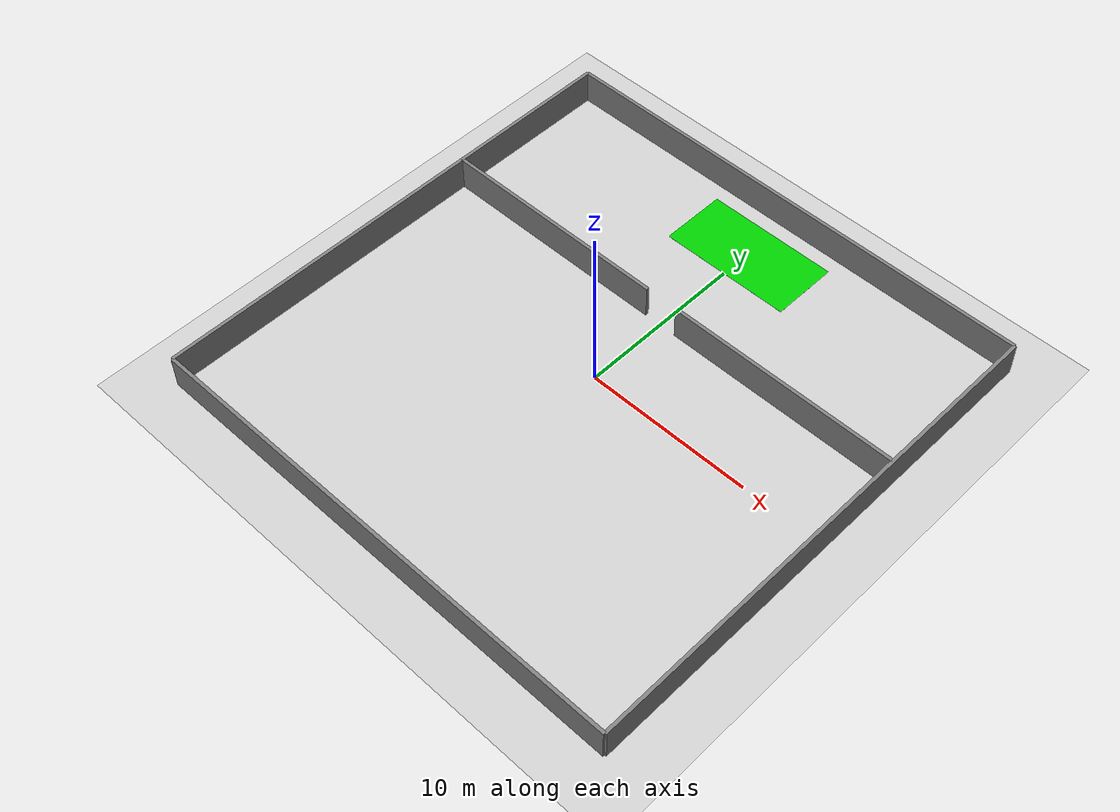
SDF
<?xml version="1.0" ?>
<sdf version="1.9">
  <world name="disaster_hospital">
    <physics name="1ms" type="ignored"><max_step_size>0.001</max_step_size><real_time_factor>1.0</real_time_factor></physics>
    <plugin filename="gz-sim-physics-system" name="gz::sim::systems::Physics"/>
    <plugin filename="gz-sim-scene-broadcaster-system" name="gz::sim::systems::SceneBroadcaster"/>
    <plugin filename="gz-sim-user-commands-system" name="gz::sim::systems::UserCommands"/>
    <plugin filename="gz-sim-sensors-system" name="gz::sim::systems::Sensors"><render_engine>ogre2</render_engine></plugin>

    <light type="directional" name="sun"><cast_shadows>true</cast_shadows><pose>0 0 10 0 0 0</pose><diffuse>0.8 0.8 0.8 1</diffuse><specular>0.2 0.2 0.2 1</specular><direction>-0.5 0.1 -0.9</direction></light>

    <model name="ground_plane"><static>true</static><link name="link"><collision name="collision"><geometry><plane><normal>0 0 1</normal><size>30 30</size></plane></geometry></collision><visual name="visual"><geometry><plane><normal>0 0 1</normal><size>30 30</size></plane></geometry><material><ambient>0.8 0.8 0.8 1</ambient><diffuse>0.8 0.8 0.8 1</diffuse></material></visual></link></model>
    <model name="safe_zone"><static>true</static><pose>0 12 0.01 0 0 0</pose><link name="link"><visual name="visual"><geometry><plane><normal>0 0 1</normal><size>8 4</size></plane></geometry><material><ambient>0.0 0.8 0.0 1</ambient><diffuse>0.0 0.8 0.0 1</diffuse></material></visual></link></model>
    <model name="hospital_walls"><static>true</static>
      <link name="north_wall"><pose>0 15 1 0 0 0</pose><collision name="c1"><geometry><box><size>30 0.2 2</size></box></geometry></collision><visual name="v1"><geometry><box><size>30 0.2 2</size></box></geometry><material><ambient>0.5 0.5 0.5 1</ambient></material></visual></link>
      <link name="south_wall"><pose>0 -15 1 0 0 0</pose><collision name="c2"><geometry><box><size>30 0.2 2</size></box></geometry></collision><visual name="v2"><geometry><box><size>30 0.2 2</size></box></geometry><material><ambient>0.5 0.5 0.5 1</ambient></material></visual></link>
      <link name="east_wall"><pose>15 0 1 0 0 0</pose><collision name="c3"><geometry><box><size>0.2 30 2</size></box></geometry></collision><visual name="v3"><geometry><box><size>0.2 30 2</size></box></geometry><material><ambient>0.5 0.5 0.5 1</ambient></material></visual></link>
      <link name="west_wall"><pose>-15 0 1 0 0 0</pose><collision name="c4"><geometry><box><size>0.2 30 2</size></box></geometry></collision><visual name="v4"><geometry><box><size>0.2 30 2</size></box></geometry><material><ambient>0.5 0.5 0.5 1</ambient></material></visual></link>
      <link name="corridor_left"><pose>-8 5 1 0 0 0</pose><collision name="c5"><geometry><box><size>14 0.2 2</size></box></geometry></collision><visual name="v5"><geometry><box><size>14 0.2 2</size></box></geometry><material><ambient>0.5 0.5 0.5 1</ambient></material></visual></link>
      <link name="corridor_right"><pose>8 5 1 0 0 0</pose><collision name="c6"><geometry><box><size>14 0.2 2</size></box></geometry></collision><visual name="v6"><geometry><box><size>14 0.2 2</size></box></geometry><material><ambient>0.5 0.5 0.5 1</ambient></material></visual></link>
    </model>
  </world>
</sdf>
